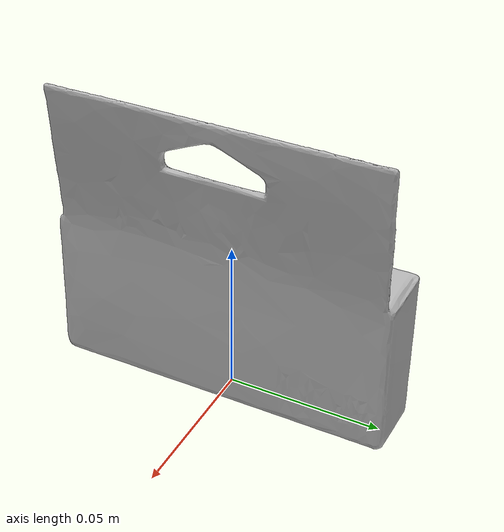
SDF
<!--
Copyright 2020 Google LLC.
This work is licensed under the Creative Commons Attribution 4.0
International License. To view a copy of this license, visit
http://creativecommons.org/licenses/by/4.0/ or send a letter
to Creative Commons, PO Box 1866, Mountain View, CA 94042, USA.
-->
<?xml version="1.0" ?>
<sdf version="1.6">
  <model name="Canon_Pixma_Ink_Cartridge_Cyan_251">
    <link name="link_0">
      <visual name="visual">
        <geometry>
          <mesh>
            <uri>meshes/model.obj</uri>
          </mesh>
        </geometry>
      </visual>
      <collision name="collision_0">
        <geometry>
          <mesh>
            <uri>meshes/model.obj</uri>
          </mesh>
        </geometry>
      </collision>
    </link>
  </model>
</sdf>
